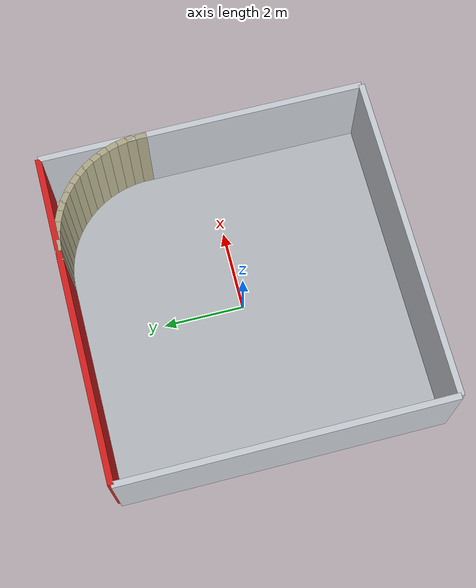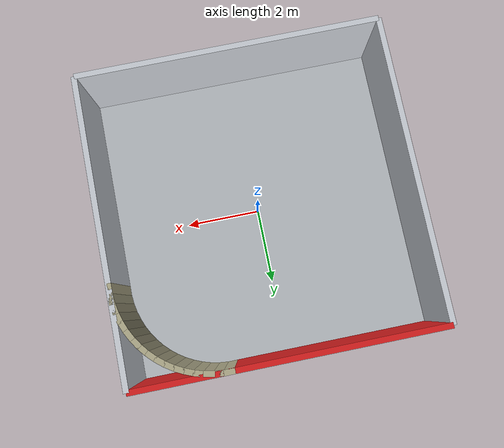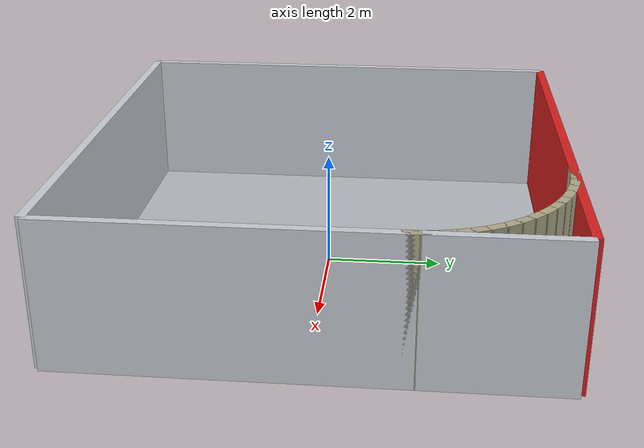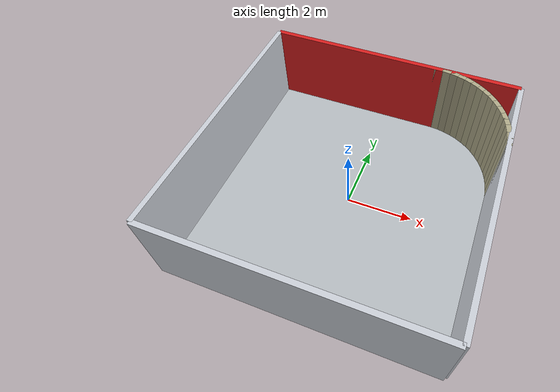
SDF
<sdf version="1.9">
 <world name="curved_wall_room">
  <physics name="1ms" type="ignored">
   <max_step_size>0.001</max_step_size>
   <real_time_factor>1.0</real_time_factor>
  </physics>
  <plugin filename="gz-sim-physics-system" name="gz::sim::systems::Physics"/>
  <plugin filename="gz-sim-scene-broadcaster-system" name="gz::sim::systems::SceneBroadcaster"/>
  <plugin filename="gz-sim-user-commands-system" name="gz::sim::systems::UserCommands"/>
  <plugin filename="gz-sim-sensors-system" name="gz::sim::systems::Sensors">
   <render_engine>ogre2</render_engine>
  </plugin>
  <plugin filename="gz-sim-imu-system" name="gz::sim::systems::Imu"/>
  <plugin filename="gz-sim-navsat-system" name="gz::sim::systems::NavSat"/>
  <spherical_coordinates>
   <latitude_deg>-35.363262</latitude_deg>
   <longitude_deg>149.165237</longitude_deg>
   <elevation>584.0</elevation>
   <heading_deg>0</heading_deg>
   <surface_model>EARTH_WGS84</surface_model>
  </spherical_coordinates>
  <light type="directional" name="main_light">
   <cast_shadows>false</cast_shadows>
   <pose>0 0 10 0 0 0</pose>
   <diffuse>1.0 1.0 1.0 1</diffuse>
   <specular>0.5 0.5 0.5 1</specular>
   <direction>0.1 0.1 -1</direction>
  </light>
  <model name="floor">
   <static>true</static>
   <link name="link">
    <collision name="c"><geometry><box><size>8.0 8.0 0.05</size></box></geometry></collision>
    <visual name="v">
     <geometry><box><size>8.0 8.0 0.05</size></box></geometry>
     <material>
      <ambient>0.72 0.74 0.76 1</ambient>
      <diffuse>0.72 0.74 0.76 1</diffuse>
      <specular>0.1 0.1 0.1 1</specular>
     </material>
    </visual>
   </link>
  </model>
  <model name="outer_south">
   <static>true</static>
   <pose>0.0000 -4.0000 1.250 0 0 0.00000</pose>
   <link name="link">
    <collision name="c"><geometry><box><size>8.0000 0.1500 2.500</size></box></geometry></collision>
    <visual name="v">
     <geometry><box><size>8.0000 0.1500 2.500</size></box></geometry>
     <material>
      <ambient>0.8 0.82 0.85 1</ambient>
      <diffuse>0.8 0.82 0.85 1</diffuse>
      <specular>0.1 0.1 0.1 1</specular>
     </material>
    </visual>
   </link>
  </model>
  <model name="outer_north">
   <static>true</static>
   <pose>0.0000 4.0000 1.250 0 0 0.00000</pose>
   <link name="link">
    <collision name="c"><geometry><box><size>8.0000 0.1500 2.500</size></box></geometry></collision>
    <visual name="v">
     <geometry><box><size>8.0000 0.1500 2.500</size></box></geometry>
     <material>
      <ambient>0.85 0.12 0.12 1</ambient>
      <diffuse>0.85 0.12 0.12 1</diffuse>
      <specular>0.1 0.1 0.1 1</specular>
     </material>
    </visual>
   </link>
  </model>
  <model name="outer_west">
   <static>true</static>
   <pose>-4.0000 0.0000 1.250 0 0 0.00000</pose>
   <link name="link">
    <collision name="c"><geometry><box><size>0.1500 8.0000 2.500</size></box></geometry></collision>
    <visual name="v">
     <geometry><box><size>0.1500 8.0000 2.500</size></box></geometry>
     <material>
      <ambient>0.8 0.82 0.85 1</ambient>
      <diffuse>0.8 0.82 0.85 1</diffuse>
      <specular>0.1 0.1 0.1 1</specular>
     </material>
    </visual>
   </link>
  </model>
  <model name="outer_east">
   <static>true</static>
   <pose>4.0000 0.0000 1.250 0 0 0.00000</pose>
   <link name="link">
    <collision name="c"><geometry><box><size>0.1500 8.0000 2.500</size></box></geometry></collision>
    <visual name="v">
     <geometry><box><size>0.1500 8.0000 2.500</size></box></geometry>
     <material>
      <ambient>0.8 0.82 0.85 1</ambient>
      <diffuse>0.8 0.82 0.85 1</diffuse>
      <specular>0.1 0.1 0.1 1</specular>
     </material>
    </visual>
   </link>
  </model>
  <model name="arc_s0">
   <static>true</static>
   <pose>4.0000 1.5000 1.250 0 0 0.00000</pose>
   <link name="link">
    <collision name="c"><geometry><box><size>0.1500 0.2823 2.500</size></box></geometry></collision>
    <visual name="v">
     <geometry><box><size>0.1500 0.2823 2.500</size></box></geometry>
     <material>
      <ambient>0.7 0.68 0.55 1</ambient>
      <diffuse>0.7 0.68 0.55 1</diffuse>
      <specular>0.1 0.1 0.1 1</specular>
     </material>
    </visual>
   </link>
  </model>
  <model name="arc_s1">
   <static>true</static>
   <pose>3.9880 1.7450 1.250 0 0 0.09817</pose>
   <link name="link">
    <collision name="c"><geometry><box><size>0.1500 0.2823 2.500</size></box></geometry></collision>
    <visual name="v">
     <geometry><box><size>0.1500 0.2823 2.500</size></box></geometry>
     <material>
      <ambient>0.7 0.68 0.55 1</ambient>
      <diffuse>0.7 0.68 0.55 1</diffuse>
      <specular>0.1 0.1 0.1 1</specular>
     </material>
    </visual>
   </link>
  </model>
  <model name="arc_s2">
   <static>true</static>
   <pose>3.9520 1.9877 1.250 0 0 0.19635</pose>
   <link name="link">
    <collision name="c"><geometry><box><size>0.1500 0.2823 2.500</size></box></geometry></collision>
    <visual name="v">
     <geometry><box><size>0.1500 0.2823 2.500</size></box></geometry>
     <material>
      <ambient>0.7 0.68 0.55 1</ambient>
      <diffuse>0.7 0.68 0.55 1</diffuse>
      <specular>0.1 0.1 0.1 1</specular>
     </material>
    </visual>
   </link>
  </model>
  <model name="arc_s3">
   <static>true</static>
   <pose>3.8924 2.2257 1.250 0 0 0.29452</pose>
   <link name="link">
    <collision name="c"><geometry><box><size>0.1500 0.2823 2.500</size></box></geometry></collision>
    <visual name="v">
     <geometry><box><size>0.1500 0.2823 2.500</size></box></geometry>
     <material>
      <ambient>0.7 0.68 0.55 1</ambient>
      <diffuse>0.7 0.68 0.55 1</diffuse>
      <specular>0.1 0.1 0.1 1</specular>
     </material>
    </visual>
   </link>
  </model>
  <model name="arc_s4">
   <static>true</static>
   <pose>3.8097 2.4567 1.250 0 0 0.39270</pose>
   <link name="link">
    <collision name="c"><geometry><box><size>0.1500 0.2823 2.500</size></box></geometry></collision>
    <visual name="v">
     <geometry><box><size>0.1500 0.2823 2.500</size></box></geometry>
     <material>
      <ambient>0.7 0.68 0.55 1</ambient>
      <diffuse>0.7 0.68 0.55 1</diffuse>
      <specular>0.1 0.1 0.1 1</specular>
     </material>
    </visual>
   </link>
  </model>
  <model name="arc_s5">
   <static>true</static>
   <pose>3.7048 2.6785 1.250 0 0 0.49087</pose>
   <link name="link">
    <collision name="c"><geometry><box><size>0.1500 0.2823 2.500</size></box></geometry></collision>
    <visual name="v">
     <geometry><box><size>0.1500 0.2823 2.500</size></box></geometry>
     <material>
      <ambient>0.7 0.68 0.55 1</ambient>
      <diffuse>0.7 0.68 0.55 1</diffuse>
      <specular>0.1 0.1 0.1 1</specular>
     </material>
    </visual>
   </link>
  </model>
  <model name="arc_s6">
   <static>true</static>
   <pose>3.5787 2.8889 1.250 0 0 0.58905</pose>
   <link name="link">
    <collision name="c"><geometry><box><size>0.1500 0.2823 2.500</size></box></geometry></collision>
    <visual name="v">
     <geometry><box><size>0.1500 0.2823 2.500</size></box></geometry>
     <material>
      <ambient>0.7 0.68 0.55 1</ambient>
      <diffuse>0.7 0.68 0.55 1</diffuse>
      <specular>0.1 0.1 0.1 1</specular>
     </material>
    </visual>
   </link>
  </model>
  <model name="arc_s7">
   <static>true</static>
   <pose>3.4325 3.0860 1.250 0 0 0.68722</pose>
   <link name="link">
    <collision name="c"><geometry><box><size>0.1500 0.2823 2.500</size></box></geometry></collision>
    <visual name="v">
     <geometry><box><size>0.1500 0.2823 2.500</size></box></geometry>
     <material>
      <ambient>0.7 0.68 0.55 1</ambient>
      <diffuse>0.7 0.68 0.55 1</diffuse>
      <specular>0.1 0.1 0.1 1</specular>
     </material>
    </visual>
   </link>
  </model>
  <model name="arc_s8">
   <static>true</static>
   <pose>3.2678 3.2678 1.250 0 0 0.78540</pose>
   <link name="link">
    <collision name="c"><geometry><box><size>0.1500 0.2823 2.500</size></box></geometry></collision>
    <visual name="v">
     <geometry><box><size>0.1500 0.2823 2.500</size></box></geometry>
     <material>
      <ambient>0.7 0.68 0.55 1</ambient>
      <diffuse>0.7 0.68 0.55 1</diffuse>
      <specular>0.1 0.1 0.1 1</specular>
     </material>
    </visual>
   </link>
  </model>
  <model name="arc_s9">
   <static>true</static>
   <pose>3.0860 3.4325 1.250 0 0 0.88357</pose>
   <link name="link">
    <collision name="c"><geometry><box><size>0.1500 0.2823 2.500</size></box></geometry></collision>
    <visual name="v">
     <geometry><box><size>0.1500 0.2823 2.500</size></box></geometry>
     <material>
      <ambient>0.7 0.68 0.55 1</ambient>
      <diffuse>0.7 0.68 0.55 1</diffuse>
      <specular>0.1 0.1 0.1 1</specular>
     </material>
    </visual>
   </link>
  </model>
  <model name="arc_s10">
   <static>true</static>
   <pose>2.8889 3.5787 1.250 0 0 0.98175</pose>
   <link name="link">
    <collision name="c"><geometry><box><size>0.1500 0.2823 2.500</size></box></geometry></collision>
    <visual name="v">
     <geometry><box><size>0.1500 0.2823 2.500</size></box></geometry>
     <material>
      <ambient>0.7 0.68 0.55 1</ambient>
      <diffuse>0.7 0.68 0.55 1</diffuse>
      <specular>0.1 0.1 0.1 1</specular>
     </material>
    </visual>
   </link>
  </model>
  <model name="arc_s11">
   <static>true</static>
   <pose>2.6785 3.7048 1.250 0 0 1.07992</pose>
   <link name="link">
    <collision name="c"><geometry><box><size>0.1500 0.2823 2.500</size></box></geometry></collision>
    <visual name="v">
     <geometry><box><size>0.1500 0.2823 2.500</size></box></geometry>
     <material>
      <ambient>0.7 0.68 0.55 1</ambient>
      <diffuse>0.7 0.68 0.55 1</diffuse>
      <specular>0.1 0.1 0.1 1</specular>
     </material>
    </visual>
   </link>
  </model>
  <model name="arc_s12">
   <static>true</static>
   <pose>2.4567 3.8097 1.250 0 0 1.17810</pose>
   <link name="link">
    <collision name="c"><geometry><box><size>0.1500 0.2823 2.500</size></box></geometry></collision>
    <visual name="v">
     <geometry><box><size>0.1500 0.2823 2.500</size></box></geometry>
     <material>
      <ambient>0.7 0.68 0.55 1</ambient>
      <diffuse>0.7 0.68 0.55 1</diffuse>
      <specular>0.1 0.1 0.1 1</specular>
     </material>
    </visual>
   </link>
  </model>
  <model name="arc_s13">
   <static>true</static>
   <pose>2.2257 3.8924 1.250 0 0 1.27627</pose>
   <link name="link">
    <collision name="c"><geometry><box><size>0.1500 0.2823 2.500</size></box></geometry></collision>
    <visual name="v">
     <geometry><box><size>0.1500 0.2823 2.500</size></box></geometry>
     <material>
      <ambient>0.7 0.68 0.55 1</ambient>
      <diffuse>0.7 0.68 0.55 1</diffuse>
      <specular>0.1 0.1 0.1 1</specular>
     </material>
    </visual>
   </link>
  </model>
  <model name="arc_s14">
   <static>true</static>
   <pose>1.9877 3.9520 1.250 0 0 1.37445</pose>
   <link name="link">
    <collision name="c"><geometry><box><size>0.1500 0.2823 2.500</size></box></geometry></collision>
    <visual name="v">
     <geometry><box><size>0.1500 0.2823 2.500</size></box></geometry>
     <material>
      <ambient>0.7 0.68 0.55 1</ambient>
      <diffuse>0.7 0.68 0.55 1</diffuse>
      <specular>0.1 0.1 0.1 1</specular>
     </material>
    </visual>
   </link>
  </model>
  <model name="arc_s15">
   <static>true</static>
   <pose>1.7450 3.9880 1.250 0 0 1.47262</pose>
   <link name="link">
    <collision name="c"><geometry><box><size>0.1500 0.2823 2.500</size></box></geometry></collision>
    <visual name="v">
     <geometry><box><size>0.1500 0.2823 2.500</size></box></geometry>
     <material>
      <ambient>0.7 0.68 0.55 1</ambient>
      <diffuse>0.7 0.68 0.55 1</diffuse>
      <specular>0.1 0.1 0.1 1</specular>
     </material>
    </visual>
   </link>
  </model>
  <model name="arc_s16">
   <static>true</static>
   <pose>1.5000 4.0000 1.250 0 0 1.57080</pose>
   <link name="link">
    <collision name="c"><geometry><box><size>0.1500 0.2823 2.500</size></box></geometry></collision>
    <visual name="v">
     <geometry><box><size>0.1500 0.2823 2.500</size></box></geometry>
     <material>
      <ambient>0.7 0.68 0.55 1</ambient>
      <diffuse>0.7 0.68 0.55 1</diffuse>
      <specular>0.1 0.1 0.1 1</specular>
     </material>
    </visual>
   </link>
  </model>
 </world>
</sdf>
